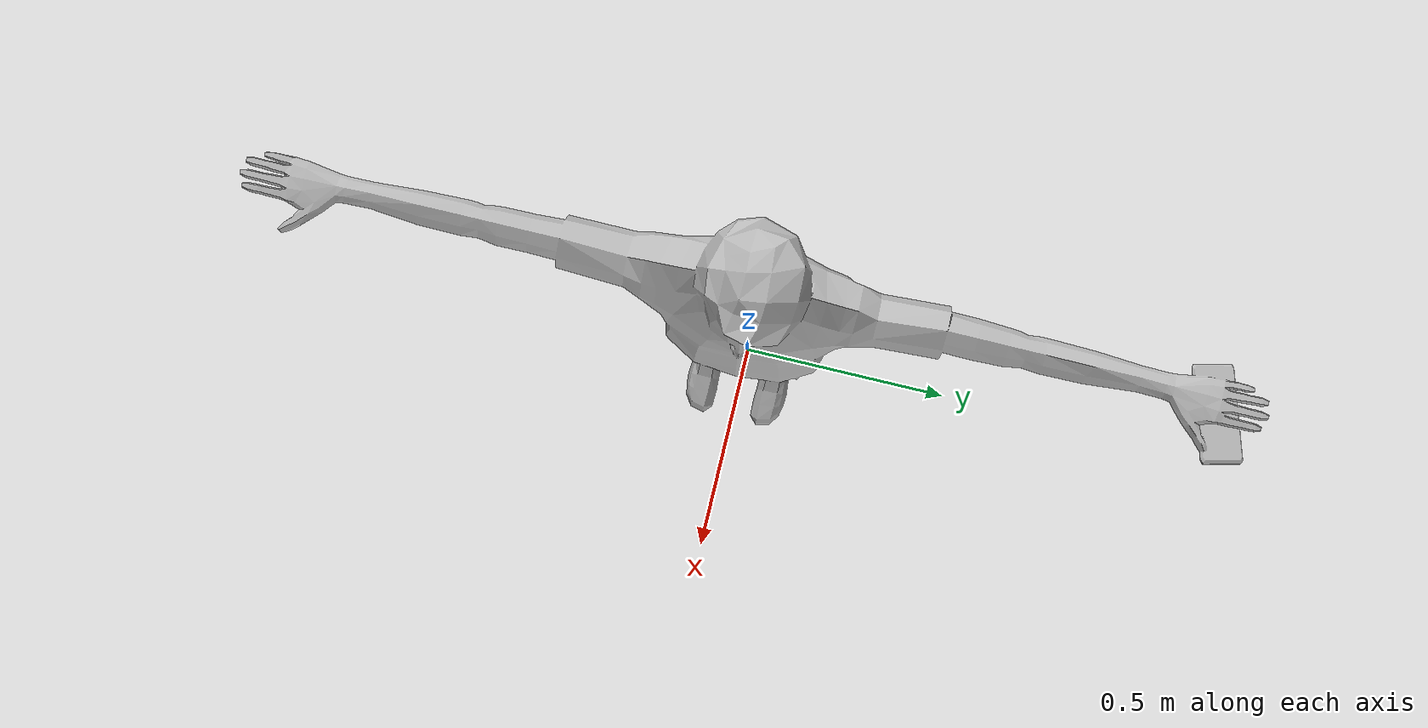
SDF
<sdf version="1.5">
  <model name="MaleVisitorPhone">
    <link name="link">
      <pose>0 0 0 0 0 0</pose>
      <visual name="visual">
        <geometry>
          <mesh><uri>model://MaleVisitorPhone/meshes/MaleVisitorPhoneIdle.dae</uri></mesh>
        </geometry>
      </visual>
      <collision name="collision">
        <geometry>
          <mesh><uri>model://MaleVisitorPhone/meshes/MaleVisitorPhoneIdle.dae</uri></mesh>
        </geometry>
      </collision>
    </link>
  </model>
</sdf>
